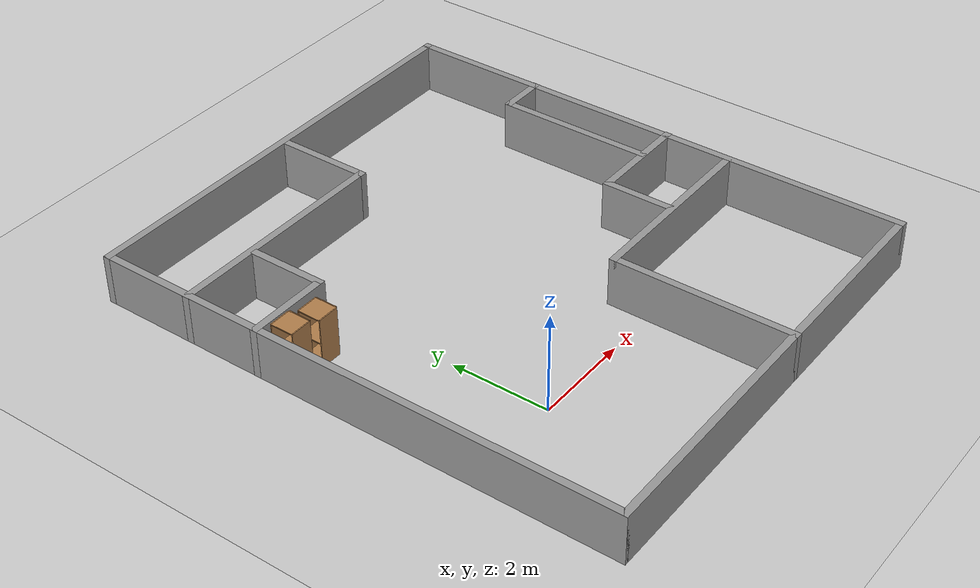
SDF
<sdf version="1.7">
 <world name="default">
  <light name="sun" type="directional">
   <pose>0 0 10 0 -0 0</pose>
   <diffuse>0.8 0.8 0.8 1</diffuse>
   <specular>0.2 0.2 0.2 1</specular>
   <attenuation>
    <range>1000</range>
    <constant>0.9</constant>
    <linear>0.01</linear>
    <quadratic>0.001</quadratic>
   </attenuation>
   <direction>-0.5 0.1 -0.9</direction>
   <spot><inner_angle>0</inner_angle><outer_angle>0</outer_angle><falloff>0</falloff></spot>
  </light>
  <model name="ground_plane">
   <static>1</static>
   <link name="link">
    <collision name="collision">
     <geometry><plane><normal>0 0 1</normal><size>100 100</size></plane></geometry>
     <surface><friction><ode><mu>100</mu><mu2>50</mu2></ode></friction></surface>
    </collision>
    <visual name="visual">
     <cast_shadows>0</cast_shadows>
     <geometry><plane><normal>0 0 1</normal><size>100 100</size></plane></geometry>
     <material>
      <script><uri>file://media/materials/scripts/gazebo.material</uri><name>Gazebo/Grey</name></script>
     </material>
    </visual>
   </link>
  </model>
  <gravity>0 0 -9.8</gravity>
  <magnetic_field>6e-06 2.3e-05 -4.2e-05</magnetic_field>
  <atmosphere type="adiabatic"/>
  <physics type="ode">
   <max_step_size>0.001</max_step_size>
   <real_time_factor>1</real_time_factor>
   <real_time_update_rate>1000</real_time_update_rate>
  </physics>
  <scene><ambient>0.4 0.4 0.4 1</ambient><background>0.7 0.7 0.7 1</background><shadows>1</shadows></scene>
  <spherical_coordinates>
   <surface_model>EARTH_WGS84</surface_model>
   <latitude_deg>0</latitude_deg>
   <longitude_deg>0</longitude_deg>
   <elevation>0</elevation>
   <heading_deg>0</heading_deg>
  </spherical_coordinates>
  <model name="test4">
   <pose>2.4414 2.55578 0 0 -0 0</pose>
   <link name="Wall_10">
    <collision name="Wall_10_Collision">
     <geometry><box><size>11 0.15 1</size></box></geometry>
     <pose>0 0 0.5 0 -0 0</pose>
    </collision>
    <visual name="Wall_10_Visual">
     <pose>0 0 0.5 0 -0 0</pose>
     <geometry><box><size>11 0.15 1</size></box></geometry>
     <material>
      <script><uri>file://media/materials/scripts/gazebo.material</uri><name>Gazebo/Grey</name></script>
      <ambient>1 1 1 1</ambient>
     </material>
     <meta><layer>0</layer></meta>
    </visual>
    <pose>-4.55811 0 0 0 -0 -1.5708</pose>
   </link>
   <link name="Wall_12">
    <collision name="Wall_12_Collision">
     <geometry><box><size>3.75 0.15 1</size></box></geometry>
     <pose>0 0 0.5 0 -0 0</pose>
    </collision>
    <visual name="Wall_12_Visual">
     <pose>0 0 0.5 0 -0 0</pose>
     <geometry><box><size>3.75 0.15 1</size></box></geometry>
     <material>
      <script><uri>file://media/materials/scripts/gazebo.material</uri><name>Gazebo/Grey</name></script>
      <ambient>1 1 1 1</ambient>
     </material>
     <meta><layer>0</layer></meta>
    </visual>
    <pose>0.611895 -3.625 0 0 -0 1.5708</pose>
   </link>
   <link name="Wall_13">
    <collision name="Wall_13_Collision">
     <geometry><box><size>4 0.15 1</size></box></geometry>
     <pose>0 0 0.5 0 -0 0</pose>
    </collision>
    <visual name="Wall_13_Visual">
     <pose>0 0 0.5 0 -0 0</pose>
     <geometry><box><size>4 0.15 1</size></box></geometry>
     <material>
      <script><uri>file://media/materials/scripts/gazebo.material</uri><name>Gazebo/Grey</name></script>
      <ambient>1 1 1 1</ambient>
     </material>
     <meta><layer>0</layer></meta>
    </visual>
    <pose>2.53689 -1.825 0 0 -0 0</pose>
   </link>
   <link name="Wall_15">
    <collision name="Wall_15_Collision">
     <geometry><box><size>1.5 0.15 1</size></box></geometry>
     <pose>0 0 0.5 0 -0 0</pose>
    </collision>
    <visual name="Wall_15_Visual">
     <pose>0 0 0.5 0 -0 0</pose>
     <geometry><box><size>1.5 0.15 1</size></box></geometry>
     <material>
      <script><uri>file://media/materials/scripts/gazebo.material</uri><name>Gazebo/Grey</name></script>
      <ambient>1 1 1 1</ambient>
     </material>
     <meta><layer>0</layer></meta>
    </visual>
    <pose>2.50789 -1.11 0 0 -0 1.5708</pose>
   </link>
   <link name="Wall_16">
    <collision name="Wall_16_Collision">
     <geometry><box><size>2.2 0.15 1</size></box></geometry>
     <pose>0 0 0.5 0 -0 0</pose>
    </collision>
    <visual name="Wall_16_Visual">
     <pose>0 0 0.5 0 -0 0</pose>
     <geometry><box><size>2.2 0.15 1</size></box></geometry>
     <material>
      <script><uri>file://media/materials/scripts/gazebo.material</uri><name>Gazebo/Grey</name></script>
      <ambient>1 1 1 1</ambient>
     </material>
     <meta><layer>0</layer></meta>
    </visual>
    <pose>3.53309 -0.434864 0 0 -0 0.000132</pose>
   </link>
   <link name="Wall_18">
    <collision name="Wall_18_Collision">
     <geometry><box><size>3.25 0.15 1</size></box></geometry>
     <pose>0 0 0.5 0 -0 0</pose>
    </collision>
    <visual name="Wall_18_Visual">
     <pose>0 0 0.5 0 -0 0</pose>
     <geometry><box><size>3.25 0.15 1</size></box></geometry>
     <material>
      <script><uri>file://media/materials/scripts/gazebo.material</uri><name>Gazebo/Grey</name></script>
      <ambient>1 1 1 1</ambient>
     </material>
     <meta><layer>0</layer></meta>
    </visual>
    <pose>3.7009 1.142 0 0 -0 1.5708</pose>
   </link>
   <link name="Wall_19">
    <collision name="Wall_19_Collision">
     <geometry><box><size>1 0.15 1</size></box></geometry>
     <pose>0 0 0.5 0 -0 0</pose>
    </collision>
    <visual name="Wall_19_Visual">
     <pose>0 0 0.5 0 -0 0</pose>
     <geometry><box><size>1 0.15 1</size></box></geometry>
     <material>
      <script><uri>file://media/materials/scripts/gazebo.material</uri><name>Gazebo/Grey</name></script>
      <ambient>1 1 1 1</ambient>
     </material>
     <meta><layer>0</layer></meta>
    </visual>
    <pose>4.1261 2.69192 0 0 -0 -0.000198</pose>
   </link>
   <link name="Wall_21">
    <collision name="Wall_21_Collision">
     <geometry><box><size>4.75 0.15 1</size></box></geometry>
     <pose>0 0 0.5 0 -0 0</pose>
    </collision>
    <visual name="Wall_21_Visual">
     <pose>0 0 0.5 0 -0 0</pose>
     <geometry><box><size>4.75 0.15 1</size></box></geometry>
     <material>
      <script><uri>file://media/materials/scripts/gazebo.material</uri><name>Gazebo/Grey</name></script>
      <ambient>1 1 1 1</ambient>
     </material>
     <meta><layer>0</layer></meta>
    </visual>
    <pose>-2.25811 3.507 0 0 -0 0</pose>
   </link>
   <link name="Wall_22">
    <collision name="Wall_22_Collision">
     <geometry><box><size>2 0.15 1</size></box></geometry>
     <pose>0 0 0.5 0 -0 0</pose>
    </collision>
    <visual name="Wall_22_Visual">
     <pose>0 0 0.5 0 -0 0</pose>
     <geometry><box><size>2 0.15 1</size></box></geometry>
     <material>
      <script><uri>file://media/materials/scripts/gazebo.material</uri><name>Gazebo/Grey</name></script>
      <ambient>1 1 1 1</ambient>
     </material>
     <meta><layer>0</layer></meta>
    </visual>
    <pose>0.041895 4.432 0 0 -0 1.5708</pose>
   </link>
   <link name="Wall_24">
    <collision name="Wall_24_Collision">
     <geometry><box><size>1.75 0.15 1</size></box></geometry>
     <pose>0 0 0.5 0 -0 0</pose>
    </collision>
    <visual name="Wall_24_Visual">
     <pose>0 0 0.5 0 -0 0</pose>
     <geometry><box><size>1.75 0.15 1</size></box></geometry>
     <material>
      <script><uri>file://media/materials/scripts/gazebo.material</uri><name>Gazebo/Grey</name></script>
      <ambient>1 1 1 1</ambient>
     </material>
     <meta><layer>0</layer></meta>
    </visual>
    <pose>-3.75811 1.947 0 0 -0 0</pose>
   </link>
   <link name="Wall_26">
    <collision name="Wall_26_Collision">
     <geometry><box><size>1.6 0.15 1</size></box></geometry>
     <pose>0 0 0.5 0 -0 0</pose>
    </collision>
    <visual name="Wall_26_Visual">
     <pose>0 0 0.5 0 -0 0</pose>
     <geometry><box><size>1.6 0.15 1</size></box></geometry>
     <material>
      <script><uri>file://media/materials/scripts/gazebo.material</uri><name>Gazebo/Grey</name></script>
      <ambient>1 1 1 1</ambient>
     </material>
     <meta><layer>0</layer></meta>
    </visual>
    <pose>-2.95808 2.67214 0 0 -0 1.57076</pose>
   </link>
   <link name="Wall_7">
    <collision name="Wall_7_Collision">
     <geometry><box><size>9.25 0.15 1</size></box></geometry>
     <pose>0 0 0.5 0 -0 0</pose>
    </collision>
    <visual name="Wall_7_Visual">
     <pose>0 0 0.5 0 -0 0</pose>
     <geometry><box><size>9.25 0.15 1</size></box></geometry>
     <material>
      <script><uri>file://media/materials/scripts/gazebo.material</uri><name>Gazebo/Grey</name></script>
      <ambient>1 1 1 1</ambient>
     </material>
     <meta><layer>0</layer></meta>
    </visual>
    <pose>-0.008105 -5.425 0 0 -0 0</pose>
   </link>
   <link name="Wall_8">
    <collision name="Wall_8_Collision">
     <geometry><box><size>11 0.15 1</size></box></geometry>
     <pose>0 0 0.5 0 -0 0</pose>
    </collision>
    <visual name="Wall_8_Visual">
     <pose>0 0 0.5 0 -0 0</pose>
     <geometry><box><size>11 0.15 1</size></box></geometry>
     <material>
      <script><uri>file://media/materials/scripts/gazebo.material</uri><name>Gazebo/Grey</name></script>
      <ambient>1 1 1 1</ambient>
     </material>
     <meta><layer>0</layer></meta>
    </visual>
    <pose>4.5419 0 0 0 -0 1.5708</pose>
   </link>
   <link name="Wall_9">
    <collision name="Wall_9_Collision">
     <geometry><box><size>9.25 0.15 1</size></box></geometry>
     <pose>0 0 0.5 0 -0 0</pose>
    </collision>
    <visual name="Wall_9_Visual">
     <pose>0 0 0.5 0 -0 0</pose>
     <geometry><box><size>9.25 0.15 1</size></box></geometry>
     <material>
      <script><uri>file://media/materials/scripts/gazebo.material</uri><name>Gazebo/Grey</name></script>
      <ambient>1 1 1 1</ambient>
     </material>
     <meta><layer>0</layer></meta>
    </visual>
    <pose>-0.008105 5.425 0 0 -0 3.14159</pose>
   </link>
   <static>1</static>
  </model>
  <model name="cabinet">
   <static>1</static>
   <link name="cabinet_bottom_plate">
    <inertial>
     <pose>0 0 -1 0 -0 0</pose>
     <inertia><ixx>2.05</ixx><ixy>0</ixy><ixz>0</ixz><iyy>2.05</iyy><iyz>0</iyz><izz>2.05</izz></inertia>
     <mass>25</mass>
    </inertial>
    <collision name="cabinet_bottom_plate_geom">
     <pose>0 0 0.01 0 -0 0</pose>
     <geometry><box><size>0.45 0.45 0.02</size></box></geometry>
    </collision>
    <visual name="cabinet_bottom_plate_geom_visual">
     <pose>0 0 0.01 0 -0 0</pose>
     <geometry><box><size>0.45 0.45 0.02</size></box></geometry>
     <material>
      <script><uri>file://media/materials/scripts/gazebo.material</uri><name>Gazebo/Wood</name></script>
     </material>
    </visual>
    <collision name="cabinet_bottom_plate_geom_cabinet_back_plate">
     <pose>0.235 0 0.51 0 -0 0</pose>
     <geometry><box><size>0.02 0.45 1.02</size></box></geometry>
    </collision>
    <visual name="cabinet_bottom_plate_geom_cabinet_back_plate_visual">
     <pose>0.235 0 0.51 0 -0 0</pose>
     <geometry><box><size>0.02 0.45 1.02</size></box></geometry>
     <material>
      <script><uri>file://media/materials/scripts/gazebo.material</uri><name>Gazebo/Wood</name></script>
     </material>
    </visual>
    <collision name="cabinet_bottom_plate_geom_cabinet_left_plate">
     <pose>0 0.235 0.51 0 -0 0</pose>
     <geometry><box><size>0.45 0.02 1.02</size></box></geometry>
    </collision>
    <visual name="cabinet_bottom_plate_geom_cabinet_left_plate_visual">
     <pose>0 0.235 0.51 0 -0 0</pose>
     <geometry><box><size>0.45 0.02 1.02</size></box></geometry>
     <material>
      <script><uri>file://media/materials/scripts/gazebo.material</uri><name>Gazebo/Wood</name></script>
     </material>
    </visual>
    <collision name="cabinet_bottom_plate_geom_cabinet_middle_plate">
     <pose>0 0 0.51 0 -0 0</pose>
     <geometry><box><size>0.45 0.45 0.02</size></box></geometry>
    </collision>
    <visual name="cabinet_bottom_plate_geom_cabinet_middle_plate_visual">
     <pose>0 0 0.51 0 -0 0</pose>
     <geometry><box><size>0.45 0.45 0.02</size></box></geometry>
     <material>
      <script><uri>file://media/materials/scripts/gazebo.material</uri><name>Gazebo/Wood</name></script>
     </material>
    </visual>
    <collision name="cabinet_bottom_plate_geom_cabinet_right_plate">
     <pose>0 -0.235 0.51 0 -0 0</pose>
     <geometry><box><size>0.45 0.02 1.02</size></box></geometry>
    </collision>
    <visual name="cabinet_bottom_plate_geom_cabinet_right_plate_visual">
     <pose>0 -0.235 0.51 0 -0 0</pose>
     <geometry><box><size>0.45 0.02 1.02</size></box></geometry>
     <material>
      <script><uri>file://media/materials/scripts/gazebo.material</uri><name>Gazebo/Wood</name></script>
     </material>
    </visual>
    <collision name="cabinet_bottom_plate_geom_cabinet_top_plate">
     <pose>0 0 1.01 0 -0 0</pose>
     <geometry><box><size>0.45 0.45 0.02</size></box></geometry>
    </collision>
    <visual name="cabinet_bottom_plate_geom_cabinet_top_plate_visual">
     <pose>0 0 1.01 0 -0 0</pose>
     <geometry><box><size>0.45 0.45 0.02</size></box></geometry>
     <material>
      <script><uri>file://media/materials/scripts/gazebo.material</uri><name>Gazebo/Wood</name></script>
     </material>
    </visual>
   </link>
   <pose>-1.6758 4.1315 0 0 -0 0</pose>
  </model>
  <model name="cabinet_0">
   <static>1</static>
   <link name="cabinet_bottom_plate">
    <inertial>
     <pose>0 0 -1 0 -0 0</pose>
     <inertia><ixx>2.05</ixx><ixy>0</ixy><ixz>0</ixz><iyy>2.05</iyy><iyz>0</iyz><izz>2.05</izz></inertia>
     <mass>25</mass>
    </inertial>
    <collision name="cabinet_bottom_plate_geom">
     <pose>0 0 0.01 0 -0 0</pose>
     <geometry><box><size>0.45 0.45 0.02</size></box></geometry>
    </collision>
    <visual name="cabinet_bottom_plate_geom_visual">
     <pose>0 0 0.01 0 -0 0</pose>
     <geometry><box><size>0.45 0.45 0.02</size></box></geometry>
     <material>
      <script><uri>file://media/materials/scripts/gazebo.material</uri><name>Gazebo/Wood</name></script>
     </material>
    </visual>
    <collision name="cabinet_bottom_plate_geom_cabinet_back_plate">
     <pose>0.235 0 0.51 0 -0 0</pose>
     <geometry><box><size>0.02 0.45 1.02</size></box></geometry>
    </collision>
    <visual name="cabinet_bottom_plate_geom_cabinet_back_plate_visual">
     <pose>0.235 0 0.51 0 -0 0</pose>
     <geometry><box><size>0.02 0.45 1.02</size></box></geometry>
     <material>
      <script><uri>file://media/materials/scripts/gazebo.material</uri><name>Gazebo/Wood</name></script>
     </material>
    </visual>
    <collision name="cabinet_bottom_plate_geom_cabinet_left_plate">
     <pose>0 0.235 0.51 0 -0 0</pose>
     <geometry><box><size>0.45 0.02 1.02</size></box></geometry>
    </collision>
    <visual name="cabinet_bottom_plate_geom_cabinet_left_plate_visual">
     <pose>0 0.235 0.51 0 -0 0</pose>
     <geometry><box><size>0.45 0.02 1.02</size></box></geometry>
     <material>
      <script><uri>file://media/materials/scripts/gazebo.material</uri><name>Gazebo/Wood</name></script>
     </material>
    </visual>
    <collision name="cabinet_bottom_plate_geom_cabinet_middle_plate">
     <pose>0 0 0.51 0 -0 0</pose>
     <geometry><box><size>0.45 0.45 0.02</size></box></geometry>
    </collision>
    <visual name="cabinet_bottom_plate_geom_cabinet_middle_plate_visual">
     <pose>0 0 0.51 0 -0 0</pose>
     <geometry><box><size>0.45 0.45 0.02</size></box></geometry>
     <material>
      <script><uri>file://media/materials/scripts/gazebo.material</uri><name>Gazebo/Wood</name></script>
     </material>
    </visual>
    <collision name="cabinet_bottom_plate_geom_cabinet_right_plate">
     <pose>0 -0.235 0.51 0 -0 0</pose>
     <geometry><box><size>0.45 0.02 1.02</size></box></geometry>
    </collision>
    <visual name="cabinet_bottom_plate_geom_cabinet_right_plate_visual">
     <pose>0 -0.235 0.51 0 -0 0</pose>
     <geometry><box><size>0.45 0.02 1.02</size></box></geometry>
     <material>
      <script><uri>file://media/materials/scripts/gazebo.material</uri><name>Gazebo/Wood</name></script>
     </material>
    </visual>
    <collision name="cabinet_bottom_plate_geom_cabinet_top_plate">
     <pose>0 0 1.01 0 -0 0</pose>
     <geometry><box><size>0.45 0.45 0.02</size></box></geometry>
    </collision>
    <visual name="cabinet_bottom_plate_geom_cabinet_top_plate_visual">
     <pose>0 0 1.01 0 -0 0</pose>
     <geometry><box><size>0.45 0.45 0.02</size></box></geometry>
     <material>
      <script><uri>file://media/materials/scripts/gazebo.material</uri><name>Gazebo/Wood</name></script>
     </material>
    </visual>
   </link>
   <pose>-1.13069 4.00555 0 0 -0 0</pose>
  </model>
 </world>
</sdf>
